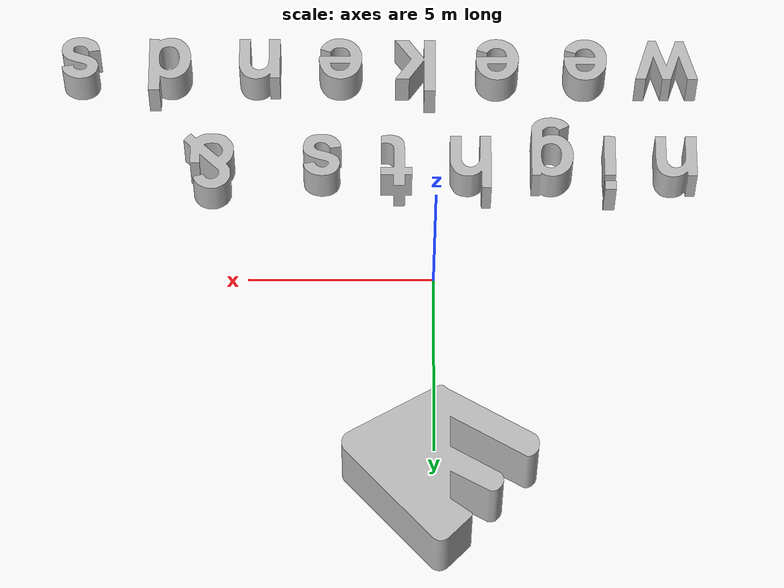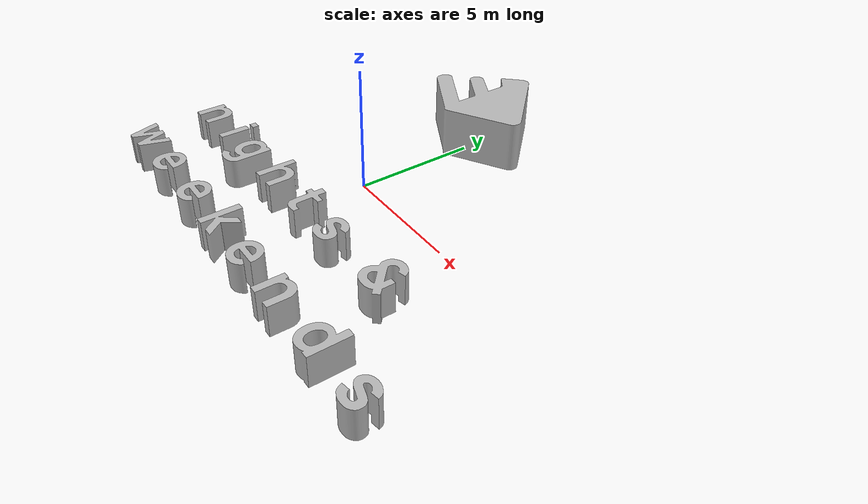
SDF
<?xml version="1.0" ?>
<sdf version="1.6">
  <model name="nights_and_weekends_s5">
    <static>true</static>
    <link name="link">
      <collision name="collision">
        <geometry>
          <mesh>
            <scale>1 1 1</scale>
            <uri>model://nights_and_weekends_s5/meshes/nights_and_weekends_s5.stl</uri>
          </mesh>
           <surface>
            <friction>
              <ode>
                <mu>1.2</mu>
                <mu2>1.2</mu2>
              </ode>
            </friction>
          </surface>
        </geometry>
      </collision>
      <visual name="visual">
        <geometry>
          <mesh>
            <scale>1 1 1</scale>
            <uri>model://nights_and_weekends_s5/meshes/nights_and_weekends_s5.dae</uri>
          </mesh>
        </geometry>
      </visual>
    </link>
  </model>
</sdf>
